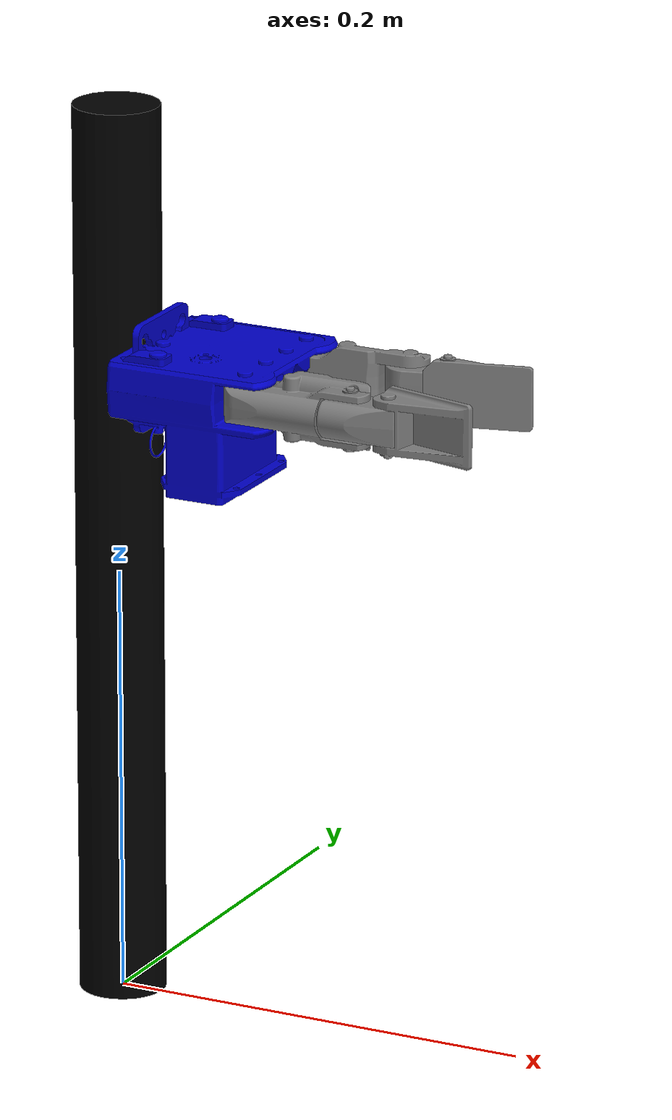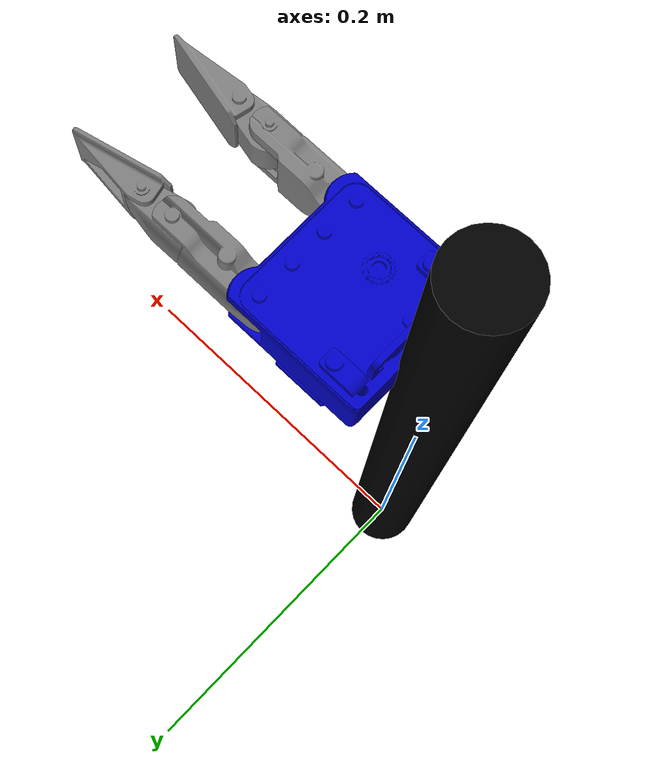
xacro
<?xml version="1.0" encoding="UTF-8"?>
<robot name="ezgripper_dual_gen2_single_mount" xmlns:xacro="http://ros.org/wiki/xacro">

	<xacro:property name="ezgripper_offset_x" value="0.02"/>
	<xacro:property name="ezgripper_offset_y" value="0.0"/>
	<xacro:property name="ezgripper_offset_z" value="0.3"/>

	<xacro:include filename="$(find ezgripper_description)/urdf/materials.urdf.xacro"/>
	<xacro:include filename="$(find ezgripper_description)/urdf/dual_gen2_single_mount/ezgripper_dual_gen2_single_mount.urdf.xacro"/>

	<!-- Add the gripper -->
	<xacro:ezgripper_dual_gen2_single_mount prefix="left" parent_link="base_link">
		<origin xyz="${ezgripper_offset_x} ${ezgripper_offset_y} ${ezgripper_offset_z}" rpy="0 0 0"/>
	</xacro:ezgripper_dual_gen2_single_mount>

	<link name="world"/>

	<joint name="fixed" type="fixed">
		<parent link="world"/>
		<child link="base_link"/>
	</joint>

	<link name="base_link">
		<visual>
			<geometry>
				<cylinder length="0.42" radius="0.02"/>
			</geometry>
			<origin rpy="0 0 0" xyz="0 0 0.21"/>
			<material name="black"/>
		</visual>
		<collision>
			<geometry>
				<cylinder length="0.42" radius="0.02"/>
			</geometry>
			<origin rpy="0 0 0" xyz="0 0 0.21"/>
		</collision>
	</link>

	<gazebo reference="base_link">
		<material>Gazebo/Black</material>
	</gazebo>

</robot>

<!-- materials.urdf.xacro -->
<robot name="ezgripper" xmlns:xacro="http://ros.org/wiki/xacro">

  <material name="black">
    <color rgba="0.0 0.0 0.0 1.0"/>
  </material>

  <material name="blue">
    <color rgba="0.0 0.0 0.8 1.0"/>
  </material>

  <material name="grey">
    <color rgba="0.5 0.5 0.5 1"/>
  </material>

</robot>

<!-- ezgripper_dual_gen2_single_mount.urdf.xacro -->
<robot name="ezgripper_dual_gen2_single_mount" xmlns:xacro="http://ros.org/wiki/xacro">

	<xacro:macro name="ezgripper_dual_gen2_single_mount" params="prefix parent_link *origin">

		<!-- links -->

		<link name="${prefix}_ezgripper_mount">
			<visual>
				<xacro:insert_block name="origin"/>
				<geometry>
					<mesh filename="package://ezgripper_description/meshes/dual_gen2_single_mount/SAKE_Single_Mount.stl"/>
				</geometry>
				<material name="blue"/>
			</visual>
			<collision>
				<xacro:insert_block name="origin"/>
				<geometry>
					<mesh filename="package://ezgripper_description/meshes/dual_gen2_single_mount/SAKE_Single_Mount.stl"/>
				</geometry>
			</collision>
			<inertial>
				<mass value=".3"/>
				<inertia ixx="0.01" ixy="0.0" ixz="0.0" iyy="0.01" iyz="0.0" izz="0.01"/>
			</inertial>
		</link>

		<gazebo reference="${prefix}_ezgripper_mount">
			<material>Gazebo/Blue</material>
		</gazebo>

		<joint name="${prefix}_ezgripper_mount2base" type="fixed">
				<origin rpy="0 0 0" xyz="0.0 0.0 0.0"/>
				<parent link="${parent_link}"/>
				<child link="${prefix}_ezgripper_mount"/>
				<axis xyz="0 0 0"/>
				<limit effort="0" lower="-1.57075" upper="0.25" velocity="3.67"/>
		</joint>

		<xacro:ezgripper_palm prefix="${prefix}" parent_link="${prefix}_ezgripper_mount">
			<xacro:insert_block name="origin"/>
		</xacro:ezgripper_palm>

	</xacro:macro>

	<xacro:macro name="ezgripper_palm" params="prefix parent_link *origin">

		<link name="${prefix}_ezgripper_palm_link">
			<visual>
				<origin xyz="0.0 0 0" rpy="0 0 0"/>
				<geometry>
					<mesh filename="package://ezgripper_description/meshes/dual_gen2_single_mount/SAKE_Palm_IM.stl"/>
				</geometry>
				<material name="blue"/>
			</visual>
			<collision>
				<origin xyz="0.0 0 0" rpy="0 0 0"/>
				<geometry>
					<mesh filename="package://ezgripper_description/meshes/dual_gen2_single_mount/SAKE_Palm_IM.stl"/>
				</geometry>
			</collision>
			<inertial>
				<mass value=".3"/>
				<inertia ixx="0.01" ixy="0.0" ixz="0.0" iyy="0.01" iyz="0.0" izz="0.01"/>
			</inertial>
		</link>

		<gazebo reference="${prefix}_ezgripper_palm_link">
			<material>Gazebo/Blue</material>
		</gazebo>

		<joint name="${prefix}_ezgripper_mount2palm" type="fixed">
				<xacro:insert_block name="origin"/>
				<parent link="${parent_link}"/>
				<child link="${prefix}_ezgripper_palm_link"/>
				<axis xyz="0 0 0"/>
				<limit effort="0" lower="-1.57075" upper="0.25" velocity="3.67"/>
		</joint>

		<xacro:ezgripper_finger_L1 prefix="${prefix}" postfix="1" reflect="1" />
		<xacro:ezgripper_finger_L1 prefix="${prefix}" postfix="2" reflect="1" />

		<xacro:ezgripper_finger_L2 prefix="${prefix}" postfix="1" reflect="1" />
		<xacro:ezgripper_finger_L2 prefix="${prefix}" postfix="2" reflect="1" />

		<xacro:ezgripper_finger_pad prefix="${prefix}" postfix="1" reflect="1" />
		<xacro:ezgripper_finger_pad prefix="${prefix}" postfix="2" reflect="1" />

		<xacro:ezgripper_knuckle_palm_L1 prefix="${prefix}" postfix="1" reflectY="1" reflectZ="1" reflectR="-1" mimic_test="false"/>
		<xacro:ezgripper_knuckle_palm_L1 prefix="${prefix}" postfix="2" reflectY="-1" reflectZ="1" reflectR="1" mimic_test="true"/>

		<xacro:ezgripper_knuckle_L1_L2 prefix="${prefix}" postfix="1" reflectY="1" reflectZ="1" reflectR="-1"/>
		<xacro:ezgripper_knuckle_L1_L2 prefix="${prefix}" postfix="2" reflectY="-1" reflectZ="1" reflectR="1"/>

		<xacro:ezgripper_joint_finger_pad prefix="${prefix}" postfix="1" reflectY="1" reflectZ="1" reflectR="1"/>
		<xacro:ezgripper_joint_finger_pad prefix="${prefix}" postfix="2" reflectY="-1" reflectZ="1" reflectR="-1"/>

		<!-- Transmission needs to be removed when mimicked -->
		<xacro:ezgripper_knuckle_palm_trans prefix="${prefix}" postfix="L1_1"/>

		<xacro:gazebo_knuckle_jsp prefix="${prefix}" />

	</xacro:macro>

	<xacro:macro name="ezgripper_finger_L1" params="prefix postfix reflect">

		<link name="${prefix}_ezgripper_finger_L1_${postfix}">
			<visual>
				<origin xyz="0 0 0" rpy="0 0 0"/>
				<geometry>
					<mesh filename="package://ezgripper_description/meshes/dual_gen2_single_mount/SAKE_Finger_L1_IM.stl"/>
				</geometry>
				<material name="grey"/>
			</visual>
			<collision>
				<origin xyz="0 0 0" rpy="0 0 0"/>
				<geometry>
					<mesh filename="package://ezgripper_description/meshes/dual_gen2_single_mount/SAKE_Finger_L1_IM.stl"/>
				</geometry>
			</collision>
			<inertial>
				<mass value=".025"/>
				<inertia ixx="0.01" ixy="0.0" ixz="0.0" iyy="0.01" iyz="0.0" izz="0.01"/>
			</inertial>
		</link>

		<gazebo reference="${prefix}_ezgripper_finger_L1_${postfix}">
			<material>Gazebo/Grey</material>
		</gazebo>

	</xacro:macro>

	<xacro:macro name="ezgripper_finger_L2" params="prefix postfix reflect">

		<link name="${prefix}_ezgripper_finger_L2_${postfix}">
			<visual>
				<origin xyz="0 0 0" rpy="0 0 0"/>
				<geometry>
					<mesh filename="package://ezgripper_description/meshes/dual_gen2_single_mount/SAKE_Finger_L2_IM.stl"/>
				</geometry>
				<material name="grey"/>
			</visual>
			<collision>
				<origin xyz="0 0 0" rpy="0 0 0"/>
				<geometry>
					<mesh filename="package://ezgripper_description/meshes/dual_gen2_single_mount/SAKE_Finger_L2_IM.stl"/>
				</geometry>
			</collision>
			<inertial>
				<mass value=".025"/>
				<inertia ixx="0.01" ixy="0.0" ixz="0.0" iyy="0.01" iyz="0.0" izz="0.01"/>
			</inertial>
		</link>

		<gazebo reference="${prefix}_ezgripper_finger_L2_${postfix}">
			<material>Gazebo/Grey</material>
		</gazebo>

	</xacro:macro>

	<xacro:macro name="ezgripper_finger_pad" params="prefix postfix reflect">

		<link name="${prefix}_ezgripper_finger_pad_${postfix}">
			<visual>
				<origin xyz="0 0 0" rpy="0 0 0"/>
				<geometry>
					<mesh filename="package://ezgripper_description/meshes/dual_gen2_single_mount/SAKE_Finger_Pad_IM.stl"/>
				</geometry>
				<material name="grey"/>
			</visual>
			<collision>
				<origin xyz="0 0 0" rpy="0 0 0"/>
				<geometry>
					<mesh filename="package://ezgripper_description/meshes/dual_gen2_single_mount/SAKE_Finger_Pad_IM.stl"/>
				</geometry>
			</collision>
			<inertial>
				<mass value=".025"/>
				<inertia ixx="0.01" ixy="0.0" ixz="0.0" iyy="0.01" iyz="0.0" izz="0.01"/>
			</inertial>
		</link>

		<gazebo reference="${prefix}_ezgripper_finger_pad_${postfix}">
			<material>Gazebo/Grey</material>
		</gazebo>

	</xacro:macro>

	<!-- Joints -->

	<xacro:macro name="ezgripper_knuckle_palm_L1" params="prefix postfix reflectY reflectZ reflectR mimic_test">
		<joint name="${prefix}_ezgripper_knuckle_palm_L1_${postfix}" type="revolute">
			<parent link="${prefix}_ezgripper_palm_link"/>
			<child link="${prefix}_ezgripper_finger_L1_${postfix}"/>
			<origin xyz="0.0595 ${reflectY*0.03} 0" rpy="${1.5708 * reflectR} 0 0"/>
			<axis xyz="0 1 0"/>
			<limit lower="-1.57075" upper="0.27" effort="1" velocity="3.67"/>
			<xacro:if value="${mimic_test}">
					<mimic joint="${prefix}_ezgripper_knuckle_palm_L1_1"/>
			</xacro:if>
		</joint>
	</xacro:macro>

	<xacro:macro name="ezgripper_knuckle_L1_L2" params="prefix postfix reflectY reflectZ reflectR">
		<joint name="${prefix}_ezgripper_knuckle_L1_L2_${postfix}" type="fixed">
			<parent link="${prefix}_ezgripper_finger_L1_${postfix}"/>
			<child link="${prefix}_ezgripper_finger_L2_${postfix}"/>
			<origin xyz="0.052 0 0" rpy="0 0 0"/>
			<axis xyz="0 1 0"/>
		</joint>
	</xacro:macro>

	<xacro:macro name="ezgripper_joint_finger_pad" params="prefix postfix reflectY reflectZ reflectR">
		<joint name="${prefix}_ezgripper_joint_finger_pad${postfix}" type="fixed">
			<parent link="${prefix}_ezgripper_finger_L2_${postfix}"/>
			<child link="${prefix}_ezgripper_finger_pad_${postfix}"/>
			<origin xyz="0.01849 0 0" rpy="0 -0.2318 0"/>
			<axis xyz="0 1 0"/>
		</joint>
	</xacro:macro>

	<!-- Transmissions for Gazebo -->

	<xacro:macro name="ezgripper_knuckle_palm_trans" params="prefix postfix">
		<transmission name="${prefix}_ezgripper_knuckle_palm_trans_${postfix}">
				<type>transmission_interface/SimpleTransmission</type>
				<joint name="${prefix}_ezgripper_knuckle_palm_${postfix}">
					<hardwareInterface>hardware_interface/PositionJointInterface</hardwareInterface>
				</joint>
				<actuator name="${prefix}_ezgripper_knuckle_palm_motor${postfix}">
					<mechanicalReduction>1</mechanicalReduction>
					<hardwareInterface>hardware_interface/PositionJointInterface</hardwareInterface>
				</actuator>
		</transmission>
	</xacro:macro>

	<xacro:macro name="gazebo_knuckle_jsp" params="prefix">
		<gazebo>
			<plugin name="joint_state_publisher" filename="libgazebo_ros_joint_state_publisher.so">
				<jointName>${prefix}_ezgripper_knuckle_palm_L1_1</jointName>
			</plugin>
		</gazebo>
	</xacro:macro>

	<gazebo>

		<plugin name="gazebo_ros_control" filename="libgazebo_ros_control.so">
			<robotNamespace>/ezgripper_dual_gen2_single_mount</robotNamespace>
			<legacyModeNS>true</legacyModeNS>
		</plugin>

		<!-- Fix mimicking bug -->
		<plugin filename="libroboticsgroup_upatras_gazebo_mimic_joint_plugin.so" name="mimicker">
			<joint>left_ezgripper_knuckle_palm_L1_1</joint>
			<mimicJoint>left_ezgripper_knuckle_palm_L1_2</mimicJoint>
			<hasPID></hasPID>
		</plugin>

	</gazebo>

</robot>
